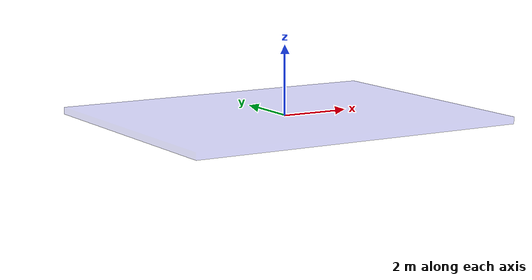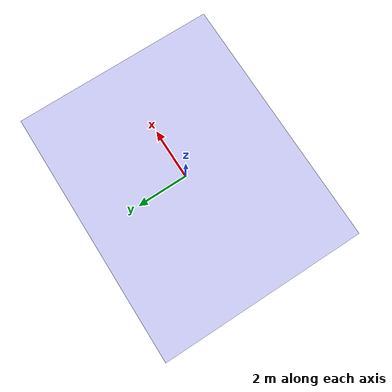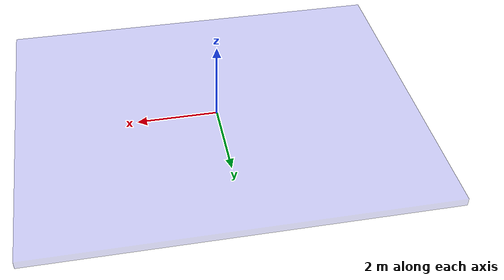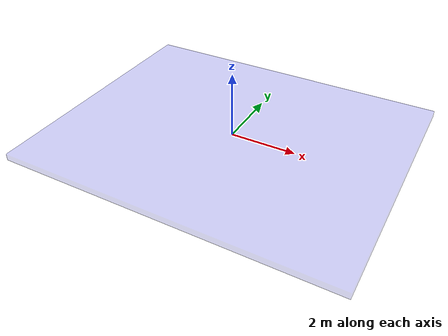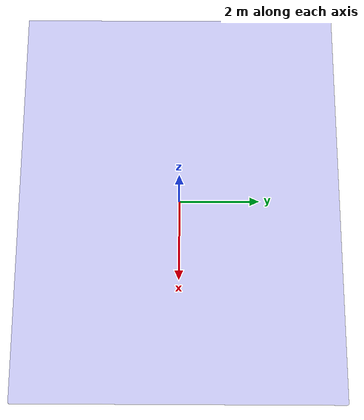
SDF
<sdf version='1.6'>
  <model name='ice'>
    <link name='sheet'>
      <pose frame=''>0 0 0 0 -0 0</pose>
      <inertial>
        <pose frame=''>0 0 0 0 -0 0</pose>
        <mass>10</mass>
        <inertia>
          <ixx>1</ixx>
          <ixy>0</ixy>
          <ixz>0</ixz>
          <iyy>1</iyy>
          <iyz>0</iyz>
          <izz>1</izz>
        </inertia>
      </inertial>
      <collision name='sheet_collision'>
        <pose frame=''>0 0 0 0 -0 0</pose>
        <geometry>
          <box>
            <size>10 8 0.2</size>
          </box>
        </geometry>
        <surface>
          <contact>
            <ode/>
          </contact>
          <friction>
            <ode/>
          </friction>
        </surface>
      </collision>
      <visual name='sheet_visual'>
        <pose frame=''>0 0 0 0 -0 0</pose>
        <geometry>
          <box>
            <size>10 8 0.2</size>
          </box>
        </geometry>
        <material>
	      <ambient>0 0 0.8 0.2</ambient>
          <diffuse>0 0 0.8 0.2</diffuse>
          <specular>0 0 0.8 0.2</specular>
          <emissive>0 0 0.8 0.2</emissive>
        </material>
      </visual>
      <gravity>false</gravity>

      <self_collide>0</self_collide>
    </link>

  </model>
</sdf>
